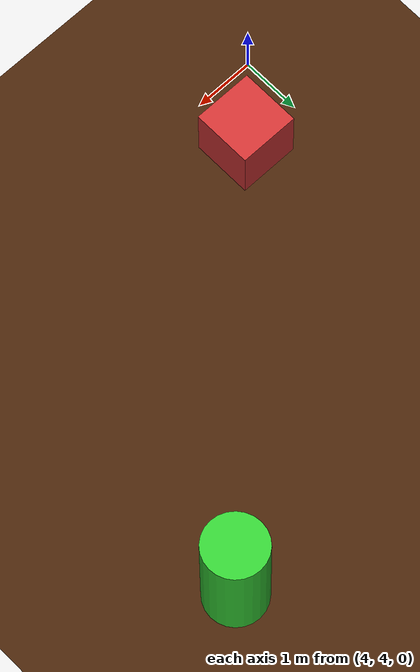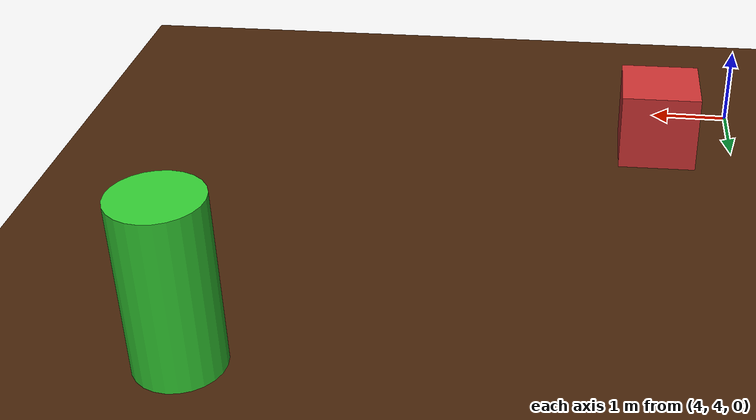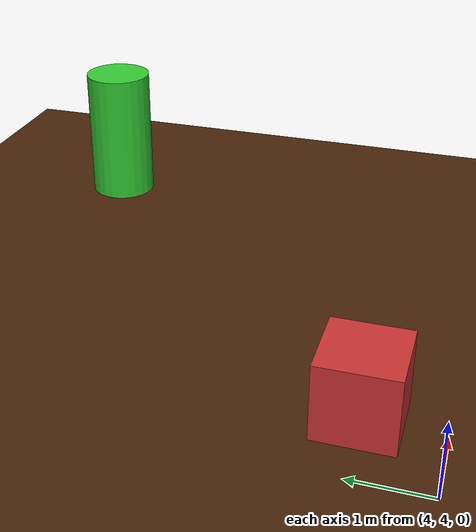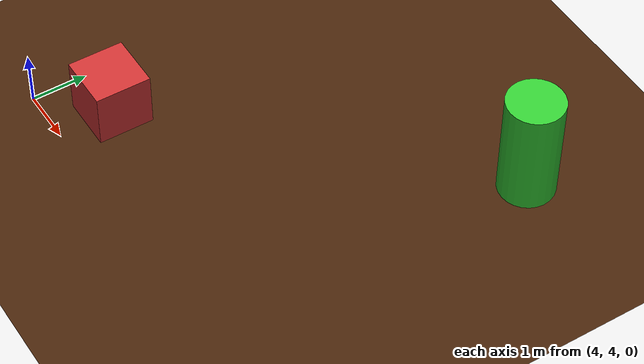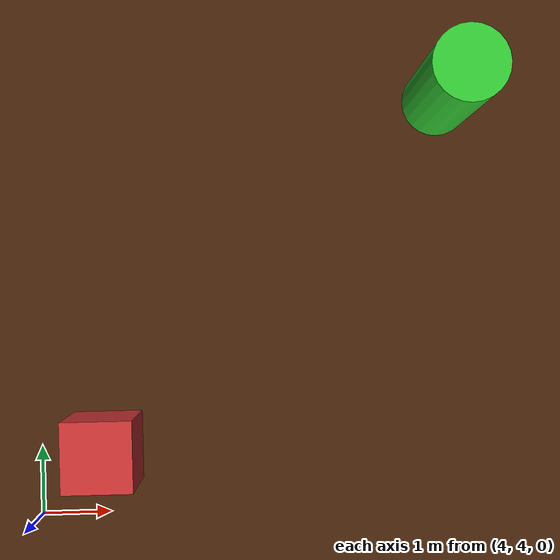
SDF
<?xml version="1.0" ?>
<sdf version="1.9">
  <world name="world_query_test">
    <scene>
      <grid>true</grid>
      <ambient>0.9 0.9 0.9 1</ambient>
      <background>0.1 0.2 0.8 1</background>
    </scene>

    <physics name="10ms" type="ignored">
      <max_step_size>0.01</max_step_size>
      <real_time_factor>1</real_time_factor>
    </physics>

    <!-- System plugins -->
    <plugin name="ignition::gazebo::systems::Physics" filename="ignition-gazebo-physics-system" />
    <plugin name="ignition::gazebo::systems::Sensors" filename="ignition-gazebo-sensors-system">
      <render_engine>ogre2</render_engine>
    </plugin>
    <plugin name="ignition::gazebo::systems::SceneBroadcaster" filename="ignition-gazebo-scene-broadcaster-system" />
    <plugin name="ignition::gazebo::systems::UserCommands" filename="ignition-gazebo-user-commands-system" />

    <!-- World Query System Plugin — grid mode for GT voxel generation -->
    <plugin name="world_query_system::WorldQuerySystem" filename="WorldQuerySystem">
      <grid_min>-2 -2 0</grid_min>
      <grid_max>14 14 4</grid_max>
      <resolution>0.2</resolution>
      <output_csv_file>/home/kalhan/Projects/HMR_Exploration_Experiment/hmr_exploration_ws/src/hmr_sim/results/world_query_test_results.csv</output_csv_file>
      <wait_iterations>200</wait_iterations>
    </plugin>

    <gravity>0 0 -9.8</gravity>
    <magnetic_field>6e-06 2.3e-05 -4.2e-05</magnetic_field>
    <atmosphere type="adiabatic" />

    <!-- Ground plane -->
    <model name="ground_plane">
      <static>true</static>
      <link name="link">
        <collision name="collision">
          <geometry>
            <plane>
              <normal>0 0 1</normal>
              <size>100 100</size>
            </plane>
          </geometry>
        </collision>
        <visual name="visual">
          <geometry>
            <plane>
              <normal>0 0 1</normal>
              <size>100 100</size>
            </plane>
          </geometry>
          <material>
            <ambient>0.28 0.14 0.04 1</ambient>
            <diffuse>0.28 0.14 0.04 1</diffuse>
          </material>
          <plugin filename="ignition-gazebo-label-system" name="ignition::gazebo::systems::Label">
            <label>1</label>
          </plugin>
        </visual>
      </link>
    </model>

    <!-- Simple box obstacle -->
    <model name="box_obstacle">
      <static>true</static>
      <pose>5 5 0.5 0 0 0</pose>
      <link name="link">
        <collision name="collision">
          <geometry>
            <box>
              <size>1 1 1</size>
            </box>
          </geometry>
        </collision>
        <visual name="visual">
          <geometry>
            <box>
              <size>1 1 1</size>
            </box>
          </geometry>
          <material>
            <ambient>0.8 0.2 0.2 1</ambient>
            <diffuse>0.8 0.2 0.2 1</diffuse>
          </material>
          <plugin filename="ignition-gazebo-label-system" name="ignition::gazebo::systems::Label">
            <label>3</label>
          </plugin>
        </visual>
      </link>
    </model>

    <!-- Cylinder obstacle -->
    <model name="cylinder_obstacle">
      <static>true</static>
      <pose>10 10 1 0 0 0</pose>
      <link name="link">
        <collision name="collision">
          <geometry>
            <cylinder>
              <radius>0.5</radius>
              <length>2</length>
            </cylinder>
          </geometry>
        </collision>
        <visual name="visual">
          <geometry>
            <cylinder>
              <radius>0.5</radius>
              <length>2</length>
            </cylinder>
          </geometry>
          <material>
            <ambient>0.2 0.8 0.2 1</ambient>
            <diffuse>0.2 0.8 0.2 1</diffuse>
          </material>
          <plugin filename="ignition-gazebo-label-system" name="ignition::gazebo::systems::Label">
            <label>2</label>
          </plugin>
        </visual>
      </link>
    </model>

    <!-- Light -->
    <light type="directional" name="sun">
      <cast_shadows>true</cast_shadows>
      <pose>0 0 10 0 0 0</pose>
      <diffuse>0.8 0.8 0.8 1</diffuse>
      <specular>0.2 0.2 0.2 1</specular>
      <attenuation>
        <range>1000</range>
        <constant>0.9</constant>
        <linear>0.01</linear>
        <quadratic>0.001</quadratic>
      </attenuation>
      <direction>-0.5 0.1 -0.9</direction>
    </light>

  </world>
</sdf>
